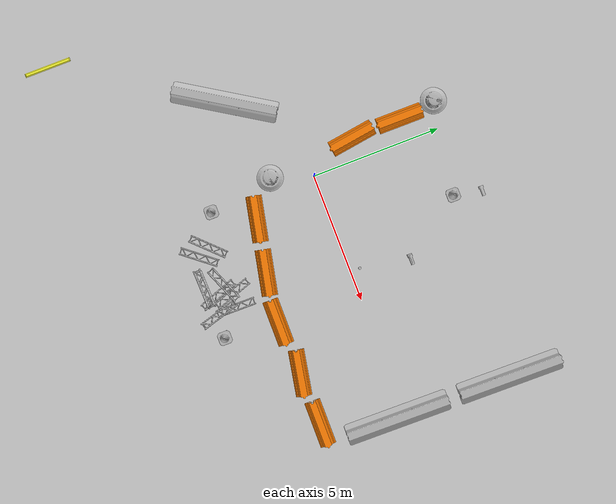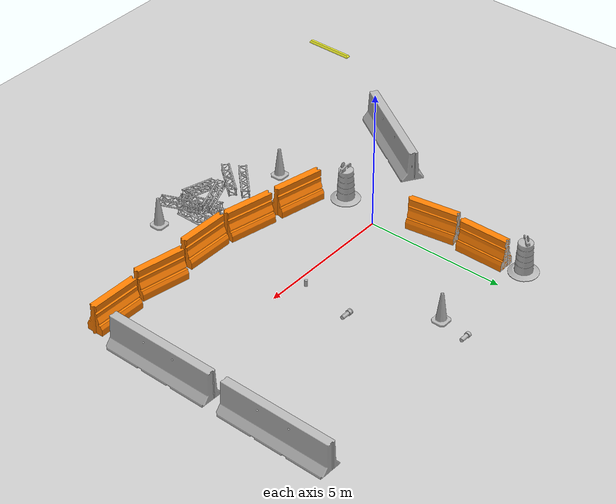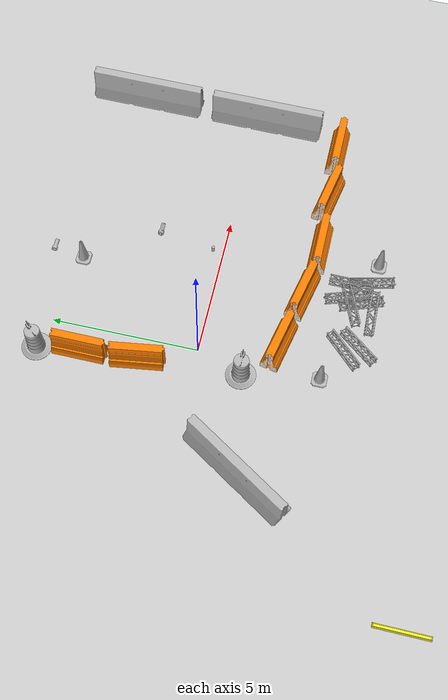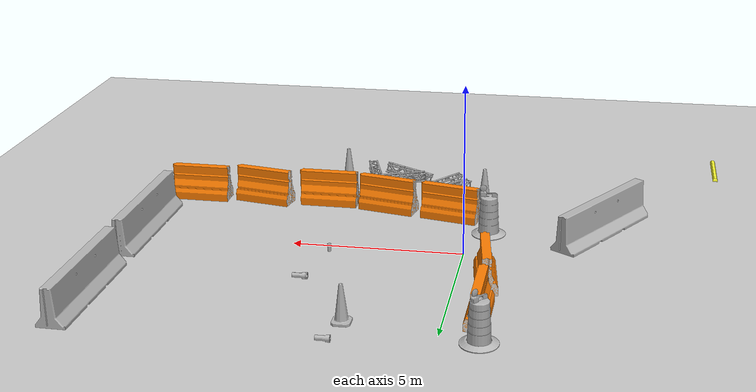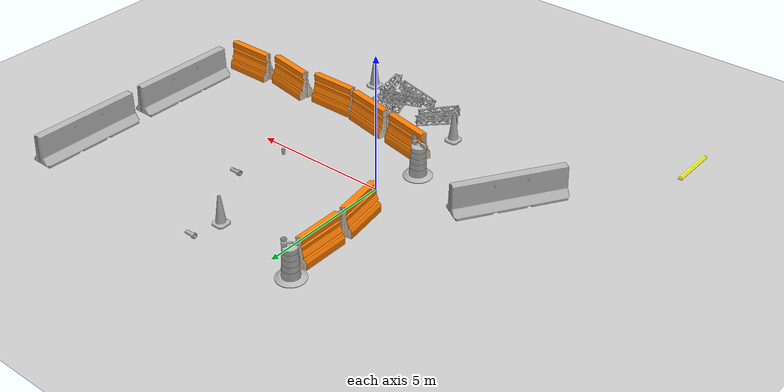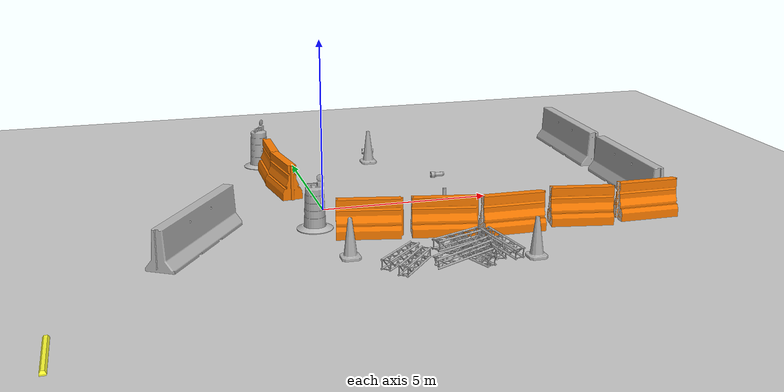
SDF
<sdf version="1.7">
 <world name="default">
  <light name="sun" type="directional">
   <pose>0 0 10 0 -0 0</pose>
   <diffuse>0.8 0.8 0.8 1</diffuse>
   <specular>0.1 0.1 0.1 1</specular>
   <attenuation>
    <range>1000</range>
    <constant>0.9</constant>
    <linear>0.01</linear>
    <quadratic>0.001</quadratic>
   </attenuation>
   <direction>-0.5 0.5 -1</direction>
   <spot><inner_angle>0</inner_angle><outer_angle>0</outer_angle><falloff>0</falloff></spot>
  </light>
  <model name="ground_plane">
   <static>1</static>
   <link name="link">
    <collision name="collision">
     <geometry><plane><normal>0 0 1</normal><size>100 100</size></plane></geometry>
     <surface><friction><ode><mu>100</mu><mu2>50</mu2></ode></friction></surface>
    </collision>
    <visual name="visual">
     <cast_shadows>0</cast_shadows>
     <geometry><plane><normal>0 0 1</normal><size>100 100</size></plane></geometry>
     <material>
      <script><uri>file://media/materials/scripts/gazebo.material</uri><name>Gazebo/Grey</name></script>
     </material>
    </visual>
   </link>
  </model>
  <gravity>0 0 -9.8</gravity>
  <magnetic_field>6e-06 2.3e-05 -4.2e-05</magnetic_field>
  <atmosphere type="adiabatic"/>
  <physics name="default_physics" default="0" type="ode">
   <max_step_size>0.001</max_step_size>
   <real_time_factor>1</real_time_factor>
   <real_time_update_rate>1000</real_time_update_rate>
  </physics>
  <scene><ambient>0.4 0.4 0.4 1</ambient><background>0.7 0.7 0.7 1</background><shadows>1</shadows></scene>
  <spherical_coordinates>
   <surface_model>EARTH_WGS84</surface_model>
   <latitude_deg>0</latitude_deg>
   <longitude_deg>0</longitude_deg>
   <elevation>0</elevation>
   <heading_deg>0</heading_deg>
  </spherical_coordinates>
  <model name="Construction Barrel">
   <link name="link">
    <inertial>
     <pose>0 0 0.4 0 -0 0</pose>
     <mass>500</mass>
     <inertia><ixx>51.2096</ixx><iyy>51.2096</iyy><izz>25</izz><ixy>0</ixy><ixz>0</ixz><iyz>0</iyz></inertia>
    </inertial>
    <collision name="collision">
     <geometry><mesh><uri>model://construction_barrel/meshes/construction_barrel.dae</uri></mesh></geometry>
    </collision>
    <visual name="visual">
     <geometry><mesh><uri>model://construction_barrel/meshes/construction_barrel.dae</uri></mesh></geometry>
    </visual>
   </link>
   <pose>-1.05597 5.25061 0 1e-06 -0 0.858297</pose>
  </model>
  <model name="drc_practice_yellow_parking_block">
   <static>1</static>
   <link name="link">
    <visual name="visual">
     <geometry><mesh><uri>model://drc_practice_yellow_parking_block/meshes/block.dae</uri></mesh></geometry>
    </visual>
    <collision name="collision">
     <geometry><mesh><uri>model://drc_practice_yellow_parking_block/meshes/block.dae</uri></mesh></geometry>
    </collision>
   </link>
   <pose>-7.46948 -7.91567 0 0 -0 0</pose>
  </model>
  <model name="drc_practice_organge_jersey_barrier">
   <static>1</static>
   <link name="link">
    <visual name="visual">
     <geometry>
      <mesh><uri>model://drc_practice_orange_jersey_barrier/meshes/jersey_barrier.dae</uri></mesh>
     </geometry>
    </visual>
    <collision name="collision">
     <geometry>
      <mesh><uri>model://drc_practice_orange_jersey_barrier/meshes/jersey_barrier.dae</uri></mesh>
     </geometry>
    </collision>
   </link>
   <pose>-0.887228 3.80913 0 0 -0 0</pose>
  </model>
  <model name="drc_practice_organge_jersey_barrier_clone">
   <static>1</static>
   <link name="link">
    <visual name="visual">
     <geometry>
      <mesh><uri>model://drc_practice_orange_jersey_barrier/meshes/jersey_barrier.dae</uri></mesh>
     </geometry>
    </visual>
    <collision name="collision">
     <geometry>
      <mesh><uri>model://drc_practice_orange_jersey_barrier/meshes/jersey_barrier.dae</uri></mesh>
     </geometry>
    </collision>
   </link>
   <pose>-0.831854 1.85615 0.074298 0 -0 0.148039</pose>
  </model>
  <model name="Construction Barrel_0">
   <link name="link">
    <inertial>
     <pose>0 0 0.4 0 -0 0</pose>
     <mass>500</mass>
     <inertia><ixx>51.2096</ixx><iyy>51.2096</iyy><izz>25</izz><ixy>0</ixy><ixz>0</ixz><iyz>0</iyz></inertia>
    </inertial>
    <collision name="collision">
     <geometry><mesh><uri>model://construction_barrel/meshes/construction_barrel.dae</uri></mesh></geometry>
    </collision>
    <visual name="visual">
     <geometry><mesh><uri>model://construction_barrel/meshes/construction_barrel.dae</uri></mesh></geometry>
    </visual>
   </link>
   <pose>-0.544692 -1.56642 0 0 -0 0.000304</pose>
  </model>
  <model name="drc_practice_organge_jersey_barrier_clone_clone_clone">
   <static>1</static>
   <link name="link">
    <visual name="visual">
     <geometry>
      <mesh><uri>model://drc_practice_orange_jersey_barrier/meshes/jersey_barrier.dae</uri></mesh>
     </geometry>
    </visual>
    <collision name="collision">
     <geometry>
      <mesh><uri>model://drc_practice_orange_jersey_barrier/meshes/jersey_barrier.dae</uri></mesh>
     </geometry>
    </collision>
   </link>
   <pose>0.730668 -2.58497 0 0 -0 1.36537</pose>
  </model>
  <model name="drc_practice_organge_jersey_barrier_clone_clone_clone_clone">
   <static>1</static>
   <link name="link">
    <visual name="visual">
     <geometry>
      <mesh><uri>model://drc_practice_orange_jersey_barrier/meshes/jersey_barrier.dae</uri></mesh>
     </geometry>
    </visual>
    <collision name="collision">
     <geometry>
      <mesh><uri>model://drc_practice_orange_jersey_barrier/meshes/jersey_barrier.dae</uri></mesh>
     </geometry>
    </collision>
   </link>
   <pose>2.74419 -2.98704 0 0 -0 1.36537</pose>
  </model>
  <model name="drc_practice_organge_jersey_barrier_clone_clone_clone_clone_0">
   <static>1</static>
   <link name="link">
    <visual name="visual">
     <geometry>
      <mesh><uri>model://drc_practice_orange_jersey_barrier/meshes/jersey_barrier.dae</uri></mesh>
     </geometry>
    </visual>
    <collision name="collision">
     <geometry>
      <mesh><uri>model://drc_practice_orange_jersey_barrier/meshes/jersey_barrier.dae</uri></mesh>
     </geometry>
    </collision>
   </link>
   <pose>4.65125 -3.23691 0 0 -0 1.56758</pose>
  </model>
  <model name="drc_practice_organge_jersey_barrier_clone_clone_clone_clone_0_clone">
   <static>1</static>
   <link name="link">
    <visual name="visual">
     <geometry>
      <mesh><uri>model://drc_practice_orange_jersey_barrier/meshes/jersey_barrier.dae</uri></mesh>
     </geometry>
    </visual>
    <collision name="collision">
     <geometry>
      <mesh><uri>model://drc_practice_orange_jersey_barrier/meshes/jersey_barrier.dae</uri></mesh>
     </geometry>
    </collision>
   </link>
   <pose>6.73423 -3.15665 0 0 -0 1.3882</pose>
  </model>
  <model name="drc_practice_organge_jersey_barrier_clone_clone_clone_clone_0_clone_0">
   <static>1</static>
   <link name="link">
    <visual name="visual">
     <geometry>
      <mesh><uri>model://drc_practice_orange_jersey_barrier/meshes/jersey_barrier.dae</uri></mesh>
     </geometry>
    </visual>
    <collision name="collision">
     <geometry>
      <mesh><uri>model://drc_practice_orange_jersey_barrier/meshes/jersey_barrier.dae</uri></mesh>
     </geometry>
    </collision>
   </link>
   <pose>8.77452 -3.12573 0 0 -0 1.56758</pose>
  </model>
  <model name="jersey_barrier">
   <static>1</static>
   <link name="link">
    <visual name="visual">
     <geometry><mesh><uri>model://jersey_barrier/meshes/jersey_barrier.dae</uri></mesh></geometry>
    </visual>
    <collision name="upright">
     <pose>0 0 0.5715 0 -0 0</pose>
     <geometry><box><size>4.06542 0.3063 1.143</size></box></geometry>
    </collision>
    <collision name="base">
     <pose>0 0 0.032258 0 -0 0</pose>
     <geometry><box><size>4.06542 0.8107 0.064516</size></box></geometry>
    </collision>
    <collision name="base2">
     <pose>0 0 0.1 0 -0 0</pose>
     <geometry><box><size>4.06542 0.65 0.1</size></box></geometry>
    </collision>
    <collision name="base3">
     <pose>0 0 0.2 0 -0 0</pose>
     <geometry><box><size>4.06542 0.5 0.1</size></box></geometry>
    </collision>
    <collision name="left-angle">
     <pose>0 -0.224 0.2401 0.9 -0 0</pose>
     <geometry><box><size>4.06542 0.5 0.064516</size></box></geometry>
    </collision>
    <collision name="right-angle">
     <pose>0 0.224 0.2401 -0.9 0 0</pose>
     <geometry><box><size>4.06542 0.5 0.064516</size></box></geometry>
    </collision>
   </link>
   <pose>9.63167 -0.326579 0 0 -0 1.55298</pose>
  </model>
  <model name="jersey_barrier_clone">
   <static>1</static>
   <link name="link">
    <visual name="visual">
     <geometry><mesh><uri>model://jersey_barrier/meshes/jersey_barrier.dae</uri></mesh></geometry>
    </visual>
    <collision name="upright">
     <pose>0 0 0.5715 0 -0 0</pose>
     <geometry><box><size>4.06542 0.3063 1.143</size></box></geometry>
    </collision>
    <collision name="base">
     <pose>0 0 0.032258 0 -0 0</pose>
     <geometry><box><size>4.06542 0.8107 0.064516</size></box></geometry>
    </collision>
    <collision name="base2">
     <pose>0 0 0.1 0 -0 0</pose>
     <geometry><box><size>4.06542 0.65 0.1</size></box></geometry>
    </collision>
    <collision name="base3">
     <pose>0 0 0.2 0 -0 0</pose>
     <geometry><box><size>4.06542 0.5 0.1</size></box></geometry>
    </collision>
    <collision name="left-angle">
     <pose>0 -0.224 0.2401 0.9 -0 0</pose>
     <geometry><box><size>4.06542 0.5 0.064516</size></box></geometry>
    </collision>
    <collision name="right-angle">
     <pose>0 0.224 0.2401 -0.9 0 0</pose>
     <geometry><box><size>4.06542 0.5 0.064516</size></box></geometry>
    </collision>
   </link>
   <pose>9.70602 4.18121 0 0 -0 1.55298</pose>
  </model>
  <model name="beer">
   <link name="link">
    <pose>0 0 0.115 0 -0 0</pose>
    <inertial>
     <mass>0.39</mass>
     <inertia><ixx>0.00058</ixx><ixy>0</ixy><ixz>0</ixz><iyy>0.00058</iyy><iyz>0</iyz><izz>0.00019</izz></inertia>
    </inertial>
    <collision name="collision">
     <geometry><cylinder><radius>0.055</radius><length>0.23</length></cylinder></geometry>
    </collision>
    <visual name="visual">
     <geometry><cylinder><radius>0.055</radius><length>0.23</length></cylinder></geometry>
     <material>
      <script>
       <uri>model://beer/materials/scripts</uri>
       <uri>model://beer/materials/textures</uri>
       <name>Beer/Diffuse</name>
      </script>
     </material>
    </visual>
   </link>
   <pose>3.85469 0.373431 -2e-06 1e-06 -0 0.000329</pose>
  </model>
  <model name="standpipe">
   <static>1</static>
   <link name="standpipe">
    <pose>0 0 0.1 0 1.57078 0</pose>
    <collision name="collision_stopper">
     <pose>0 0 0.22 0 -0 0</pose>
     <geometry><cylinder><radius>0.069</radius><length>0.1</length></cylinder></geometry>
     <surface><friction><ode><mu>0.5</mu><mu2>0.5</mu2></ode></friction></surface>
    </collision>
    <collision name="collision">
     <pose>0 0 0.15 0 -0 0</pose>
     <geometry><mesh><uri>model://standpipe/meshes/standpipe.dae</uri></mesh></geometry>
     <surface><friction><ode><mu>0.5</mu><mu2>0.5</mu2></ode></friction></surface>
    </collision>
    <visual name="visual">
     <pose>0 0 0.15 0 -0 0</pose>
     <geometry><mesh><uri>model://standpipe/meshes/standpipe.dae</uri></mesh></geometry>
    </visual>
   </link>
   <pose>3.91415 2.30422 0 0 -0 0</pose>
  </model>
  <model name="standpipe_clone">
   <static>1</static>
   <link name="standpipe">
    <pose>0 0 0.1 0 1.57078 0</pose>
    <collision name="collision_stopper">
     <pose>0 0 0.22 0 -0 0</pose>
     <geometry><cylinder><radius>0.069</radius><length>0.1</length></cylinder></geometry>
     <surface><friction><ode><mu>0.5</mu><mu2>0.5</mu2></ode></friction></surface>
    </collision>
    <collision name="collision">
     <pose>0 0 0.15 0 -0 0</pose>
     <geometry><mesh><uri>model://standpipe/meshes/standpipe.dae</uri></mesh></geometry>
     <surface><friction><ode><mu>0.5</mu><mu2>0.5</mu2></ode></friction></surface>
    </collision>
    <visual name="visual">
     <pose>0 0 0.15 0 -0 0</pose>
     <geometry><mesh><uri>model://standpipe/meshes/standpipe.dae</uri></mesh></geometry>
    </visual>
   </link>
   <pose>2.44659 5.74462 0 0 -0 0</pose>
  </model>
  <model name="jersey_barrier_0">
   <static>1</static>
   <link name="link">
    <visual name="visual">
     <geometry><mesh><uri>model://jersey_barrier/meshes/jersey_barrier.dae</uri></mesh></geometry>
    </visual>
    <collision name="upright">
     <pose>0 0 0.5715 0 -0 0</pose>
     <geometry><box><size>4.06542 0.3063 1.143</size></box></geometry>
    </collision>
    <collision name="base">
     <pose>0 0 0.032258 0 -0 0</pose>
     <geometry><box><size>4.06542 0.8107 0.064516</size></box></geometry>
    </collision>
    <collision name="base2">
     <pose>0 0 0.1 0 -0 0</pose>
     <geometry><box><size>4.06542 0.65 0.1</size></box></geometry>
    </collision>
    <collision name="base3">
     <pose>0 0 0.2 0 -0 0</pose>
     <geometry><box><size>4.06542 0.5 0.1</size></box></geometry>
    </collision>
    <collision name="left-angle">
     <pose>0 -0.224 0.2401 0.9 -0 0</pose>
     <geometry><box><size>4.06542 0.5 0.064516</size></box></geometry>
    </collision>
    <collision name="right-angle">
     <pose>0 0.224 0.2401 -0.9 0 0</pose>
     <geometry><box><size>4.06542 0.5 0.064516</size></box></geometry>
    </collision>
   </link>
   <pose>-3.83767 -2.1374 0 0 -0 1.00568</pose>
  </model>
  <model name="truss">
   <link name="link">
    <inertial>
     <mass>20.7307</mass>
     <inertia>
      <ixx>4.7978</ixx>
      <ixy>0</ixy>
      <ixz>0</ixz>
      <iyy>0.4699</iyy>
      <iyz>-0.002</iyz>
      <izz>4.7978</izz>
     </inertia>
    </inertial>
    <collision name="collision">
     <geometry><mesh><uri>model://drc_practice_truss/meshes/truss.dae</uri></mesh></geometry>
     <surface>
      <bounce><restitution_coefficient>0</restitution_coefficient><threshold>100000</threshold></bounce>
      <friction><ode><mu>10</mu><mu2>10</mu2></ode></friction>
     </surface>
    </collision>
    <visual name="visual">
     <geometry><mesh><uri>model://drc_practice_truss/meshes/truss.dae</uri></mesh></geometry>
    </visual>
   </link>
   <pose>3.55161 -4.53871 0.143306 5e-06 3e-05 -0.01353</pose>
  </model>
  <model name="truss_clone">
   <link name="link">
    <inertial>
     <mass>20.7307</mass>
     <inertia>
      <ixx>4.7978</ixx>
      <ixy>0</ixy>
      <ixz>0</ixz>
      <iyy>0.4699</iyy>
      <iyz>-0.002</iyz>
      <izz>4.7978</izz>
     </inertia>
    </inertial>
    <collision name="collision">
     <geometry><mesh><uri>model://drc_practice_truss/meshes/truss.dae</uri></mesh></geometry>
     <surface>
      <bounce><restitution_coefficient>0</restitution_coefficient><threshold>100000</threshold></bounce>
      <friction><ode><mu>10</mu><mu2>10</mu2></ode></friction>
     </surface>
    </collision>
    <visual name="visual">
     <geometry><mesh><uri>model://drc_practice_truss/meshes/truss.dae</uri></mesh></geometry>
    </visual>
   </link>
   <pose>3.0245 -4.47525 0.147269 -3.14159 -1.4e-05 -2.81753</pose>
  </model>
  <model name="truss_clone_0">
   <link name="link">
    <inertial>
     <mass>20.7307</mass>
     <inertia>
      <ixx>4.7978</ixx>
      <ixy>0</ixy>
      <ixz>0</ixz>
      <iyy>0.4699</iyy>
      <iyz>-0.002</iyz>
      <izz>4.7978</izz>
     </inertia>
    </inertial>
    <collision name="collision">
     <geometry><mesh><uri>model://drc_practice_truss/meshes/truss.dae</uri></mesh></geometry>
     <surface>
      <bounce><restitution_coefficient>0</restitution_coefficient><threshold>100000</threshold></bounce>
      <friction><ode><mu>10</mu><mu2>10</mu2></ode></friction>
     </surface>
    </collision>
    <visual name="visual">
     <geometry><mesh><uri>model://drc_practice_truss/meshes/truss.dae</uri></mesh></geometry>
    </visual>
   </link>
   <pose>3.58728 -5.20134 0.429318 -1.66668 1.48464 1.75556</pose>
  </model>
  <model name="truss_clone_1">
   <link name="link">
    <inertial>
     <mass>20.7307</mass>
     <inertia>
      <ixx>4.7978</ixx>
      <ixy>0</ixy>
      <ixz>0</ixz>
      <iyy>0.4699</iyy>
      <iyz>-0.002</iyz>
      <izz>4.7978</izz>
     </inertia>
    </inertial>
    <collision name="collision">
     <geometry><mesh><uri>model://drc_practice_truss/meshes/truss.dae</uri></mesh></geometry>
     <surface>
      <bounce><restitution_coefficient>0</restitution_coefficient><threshold>100000</threshold></bounce>
      <friction><ode><mu>10</mu><mu2>10</mu2></ode></friction>
     </surface>
    </collision>
    <visual name="visual">
     <geometry><mesh><uri>model://drc_practice_truss/meshes/truss.dae</uri></mesh></geometry>
    </visual>
   </link>
   <pose>2.87789 -4.9897 0.147996 0.001424 1.57078 0.349139</pose>
  </model>
  <model name="truss_clone_2">
   <link name="link">
    <inertial>
     <mass>20.7307</mass>
     <inertia>
      <ixx>4.7978</ixx>
      <ixy>0</ixy>
      <ixz>0</ixz>
      <iyy>0.4699</iyy>
      <iyz>-0.002</iyz>
      <izz>4.7978</izz>
     </inertia>
    </inertial>
    <collision name="collision">
     <geometry><mesh><uri>model://drc_practice_truss/meshes/truss.dae</uri></mesh></geometry>
     <surface>
      <bounce><restitution_coefficient>0</restitution_coefficient><threshold>100000</threshold></bounce>
      <friction><ode><mu>10</mu><mu2>10</mu2></ode></friction>
     </surface>
    </collision>
    <visual name="visual">
     <geometry><mesh><uri>model://drc_practice_truss/meshes/truss.dae</uri></mesh></geometry>
    </visual>
   </link>
   <pose>2.59596 -4.65028 0.438405 -1.60751 1.56556 0.347309</pose>
  </model>
  <model name="truss_clone_2_clone">
   <link name="link">
    <inertial>
     <mass>20.7307</mass>
     <inertia>
      <ixx>4.7978</ixx>
      <ixy>0</ixy>
      <ixz>0</ixz>
      <iyy>0.4699</iyy>
      <iyz>-0.002</iyz>
      <izz>4.7978</izz>
     </inertia>
    </inertial>
    <collision name="collision">
     <geometry><mesh><uri>model://drc_practice_truss/meshes/truss.dae</uri></mesh></geometry>
     <surface>
      <bounce><restitution_coefficient>0</restitution_coefficient><threshold>100000</threshold></bounce>
      <friction><ode><mu>10</mu><mu2>10</mu2></ode></friction>
     </surface>
    </collision>
    <visual name="visual">
     <geometry><mesh><uri>model://drc_practice_truss/meshes/truss.dae</uri></mesh></geometry>
    </visual>
   </link>
   <pose>2.48579 -5.38753 0.335936 -0.248969 -0.077721 1.62214</pose>
  </model>
  <model name="truss_clone_2_clone_clone">
   <link name="link">
    <inertial>
     <mass>20.7307</mass>
     <inertia>
      <ixx>4.7978</ixx>
      <ixy>0</ixy>
      <ixz>0</ixz>
      <iyy>0.4699</iyy>
      <iyz>-0.002</iyz>
      <izz>4.7978</izz>
     </inertia>
    </inertial>
    <collision name="collision">
     <geometry><mesh><uri>model://drc_practice_truss/meshes/truss.dae</uri></mesh></geometry>
     <surface>
      <bounce><restitution_coefficient>0</restitution_coefficient><threshold>100000</threshold></bounce>
      <friction><ode><mu>10</mu><mu2>10</mu2></ode></friction>
     </surface>
    </collision>
    <visual name="visual">
     <geometry><mesh><uri>model://drc_practice_truss/meshes/truss.dae</uri></mesh></geometry>
    </visual>
   </link>
   <pose>1.0415 -4.681 0.143306 -4e-06 2.7e-05 2.3613</pose>
  </model>
  <model name="truss_clone_2_clone_clone_0">
   <link name="link">
    <inertial>
     <mass>20.7307</mass>
     <inertia>
      <ixx>4.7978</ixx>
      <ixy>0</ixy>
      <ixz>0</ixz>
      <iyy>0.4699</iyy>
      <iyz>-0.002</iyz>
      <izz>4.7978</izz>
     </inertia>
    </inertial>
    <collision name="collision">
     <geometry><mesh><uri>model://drc_practice_truss/meshes/truss.dae</uri></mesh></geometry>
     <surface>
      <bounce><restitution_coefficient>0</restitution_coefficient><threshold>100000</threshold></bounce>
      <friction><ode><mu>10</mu><mu2>10</mu2></ode></friction>
     </surface>
    </collision>
    <visual name="visual">
     <geometry><mesh><uri>model://drc_practice_truss/meshes/truss.dae</uri></mesh></geometry>
    </visual>
   </link>
   <pose>1.28535 -5.14684 0.147994 0.000223 1.57079 2.46432</pose>
  </model>
  <model name="Construction Cone_clone_clone_clone">
   <link name="link">
    <collision name="collision">
     <geometry>
      <mesh><scale>10 10 10</scale><uri>model://construction_cone/meshes/construction_cone.dae</uri></mesh>
     </geometry>
    </collision>
    <visual name="visual">
     <geometry>
      <mesh><scale>10 10 10</scale><uri>model://construction_cone/meshes/construction_cone.dae</uri></mesh>
     </geometry>
    </visual>
    <inertial>
     <inertia><ixx>1</ixx><ixy>0</ixy><ixz>0</ixz><iyy>1</iyy><iyz>0</iyz><izz>1</izz></inertia>
     <mass>1</mass>
    </inertial>
   </link>
   <pose>-0.135956 -4.11164 -0 0 -0 0</pose>
  </model>
  <model name="standpipe_clone_0">
   <static>1</static>
   <link name="standpipe">
    <pose>0 0 0.1 0 1.57078 0</pose>
    <collision name="collision_stopper">
     <pose>0 0 0.22 0 -0 0</pose>
     <geometry><cylinder><radius>0.069</radius><length>0.1</length></cylinder></geometry>
     <surface><friction><ode><mu>0.5</mu><mu2>0.5</mu2></ode></friction></surface>
    </collision>
    <collision name="collision">
     <pose>0 0 0.15 0 -0 0</pose>
     <geometry><mesh><uri>model://standpipe/meshes/standpipe.dae</uri></mesh></geometry>
     <surface><friction><ode><mu>0.5</mu><mu2>0.5</mu2></ode></friction></surface>
    </collision>
    <visual name="visual">
     <pose>0 0 0.15 0 -0 0</pose>
     <geometry><mesh><uri>model://standpipe/meshes/standpipe.dae</uri></mesh></geometry>
    </visual>
   </link>
   <pose>3.87778 2.30096 0 0 -0 0</pose>
  </model>
  <model name="Construction Cone_clone_clone_clone_clone">
   <link name="link">
    <collision name="collision">
     <geometry>
      <mesh><scale>10 10 10</scale><uri>model://construction_cone/meshes/construction_cone.dae</uri></mesh>
     </geometry>
    </collision>
    <visual name="visual">
     <geometry>
      <mesh><scale>10 10 10</scale><uri>model://construction_cone/meshes/construction_cone.dae</uri></mesh>
     </geometry>
    </visual>
    <inertial>
     <inertia><ixx>1</ixx><ixy>0</ixy><ixz>0</ixz><iyy>1</iyy><iyz>0</iyz><izz>1</izz></inertia>
     <mass>1</mass>
    </inertial>
   </link>
   <pose>4.49108 -5.34208 -0 0 -0 0</pose>
  </model>
  <model name="Construction Cone">
   <link name="link">
    <collision name="collision">
     <geometry>
      <mesh><scale>10 10 10</scale><uri>model://construction_cone/meshes/construction_cone.dae</uri></mesh>
     </geometry>
    </collision>
    <visual name="visual">
     <geometry>
      <mesh><scale>10 10 10</scale><uri>model://construction_cone/meshes/construction_cone.dae</uri></mesh>
     </geometry>
    </visual>
    <inertial>
     <inertia><ixx>1</ixx><ixy>0</ixy><ixz>0</ixz><iyy>1</iyy><iyz>0</iyz><izz>1</izz></inertia>
     <mass>1</mass>
    </inertial>
   </link>
   <pose>2.54262 4.66686 -0 0 -0 0</pose>
  </model>
 </world>
</sdf>
